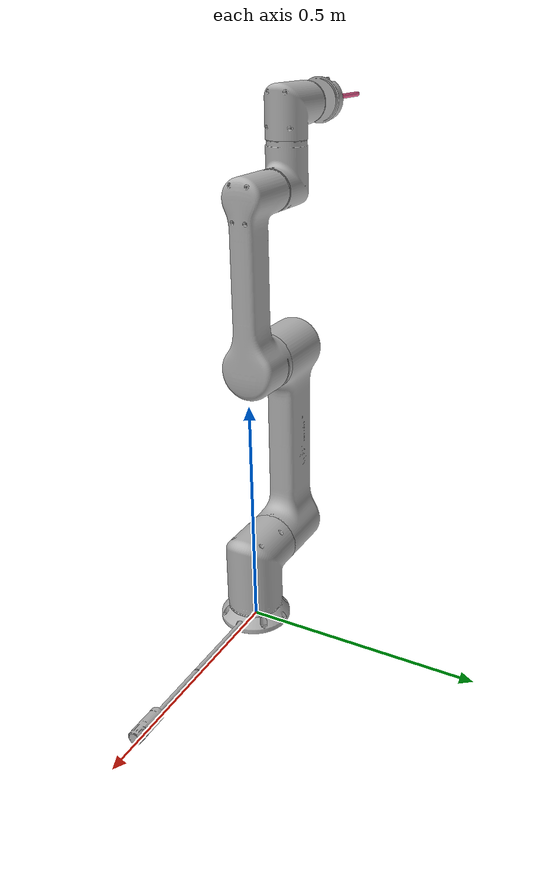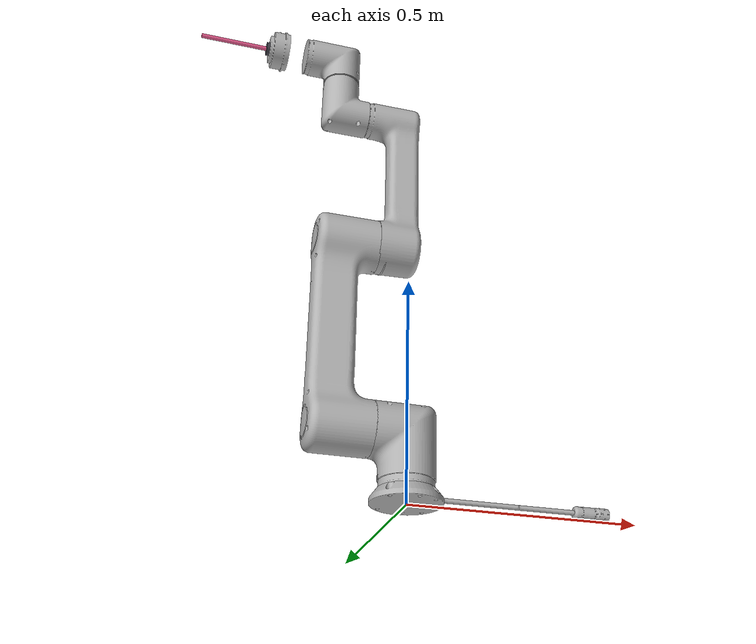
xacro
<?xml version="1.0" ?>
<robot name="hcr_robot" xmlns:xacro="http://www.ros.org/wiki/xacro">

<xacro:arg name="ros2_control"    default="true"/>
<xacro:arg name="hardware_plugin" default="mock_components/GenericSystem"/>
<xacro:arg name="rw_rate"         default="100"/>
<xacro:arg name="is_async"        default="false"/>
<!-- 기본값 false 는 플러그인 기본값과 같다 — 인자를 잊어도 로봇은 안 움직인다 -->
<xacro:arg name="allow_motion"    default="false"/>
<xacro:arg name="servo_off_on_deactivate" default="true"/>

<xacro:include filename="$(find hcr_robot_description)/urdf/materials.xacro" />
<xacro:include filename="$(find hcr_robot_description)/urdf/hcr_robot.trans" />
<xacro:include filename="$(find hcr_robot_description)/urdf/hcr_robot.gazebo" />
<xacro:include filename="$(find hcr_robot_description)/urdf/hcr_robot.ros2_control.xacro" />
<xacro:if value="$(arg ros2_control)">
  <xacro:hcr_robot_ros2_control plugin="$(arg hardware_plugin)"
                                rw_rate="$(arg rw_rate)"
                                is_async="$(arg is_async)"
                                allow_motion="$(arg allow_motion)"
                                servo_off_on_deactivate="$(arg servo_off_on_deactivate)"/>
</xacro:if>
<link name="base_link">
  <inertial>
    <origin xyz="0.044693591972953806 -9.689819846991377e-05 0.013982771179495564" rpy="0 0 0"/>
    <mass value="4.071462983655495"/>
    <inertia ixx="0.004614" iyy="0.063084" izz="0.067151" ixy="-2e-05" iyz="0.0" ixz="-0.000189"/>
  </inertial>
  <visual>
    <origin xyz="0 0 0" rpy="0 0 0"/>
    <geometry>
      <mesh filename="package://hcr_robot_description/meshes/base_link.stl" scale="0.001 0.001 0.001"/>
    </geometry>
    <material name="silver"/>
  </visual>
  <collision>
    <origin xyz="0 0 0" rpy="0 0 0"/>
    <geometry>
      <mesh filename="package://hcr_robot_description/meshes/base_link.stl" scale="0.001 0.001 0.001"/>
    </geometry>
  </collision>
</link>

<link name="link1_1">
  <inertial>
    <origin xyz="-0.009232924655966162 5.611908895686318e-08 0.08981078121700108" rpy="0 0 0"/>
    <mass value="17.125748524580114"/>
    <inertia ixx="0.054601" iyy="0.061186" izz="0.036738" ixy="0.0" iyz="-0.0" ixz="0.004569"/>
  </inertial>
  <visual>
    <origin xyz="-0.0 0.0 -0.03" rpy="0 0 0"/>
    <geometry>
      <mesh filename="package://hcr_robot_description/meshes/link1_1.stl" scale="0.001 0.001 0.001"/>
    </geometry>
    <material name="silver"/>
  </visual>
  <collision>
    <origin xyz="-0.0 0.0 -0.03" rpy="0 0 0"/>
    <geometry>
      <mesh filename="package://hcr_robot_description/meshes/link1_1.stl" scale="0.001 0.001 0.001"/>
    </geometry>
  </collision>
</link>

<link name="link2_1">
  <inertial>
    <origin xyz="-0.08134423156498356 0.0004999972193747809 0.21200027982915884" rpy="0 0 0"/>
    <mass value="32.073698785630135"/>
    <inertia ixx="1.334728" iyy="1.368804" izz="0.0845" ixy="-5e-06" iyz="-0.003172" ixz="-0.002068"/>
  </inertial>
  <visual>
    <origin xyz="0.0785 0.0 -0.148778" rpy="0 0 0"/>
    <geometry>
      <mesh filename="package://hcr_robot_description/meshes/link2_1.stl" scale="0.001 0.001 0.001"/>
    </geometry>
    <material name="silver"/>
  </visual>
  <collision>
    <origin xyz="0.0785 0.0 -0.148778" rpy="0 0 0"/>
    <geometry>
      <mesh filename="package://hcr_robot_description/meshes/link2_1.stl" scale="0.001 0.001 0.001"/>
    </geometry>
  </collision>
</link>

<link name="link3_1">
  <inertial>
    <origin xyz="0.03733088153046067 -8.45436915776097e-06 0.32700293666580915" rpy="0 0 0"/>
    <mass value="6.636542484506931"/>
    <inertia ixx="0.008668" iyy="0.014027" izz="0.010649" ixy="-0.0" iyz="0.0" ixz="0.001661"/>
  </inertial>
  <visual>
    <origin xyz="0.077848 -0.001 -0.572778" rpy="0 0 0"/>
    <geometry>
      <mesh filename="package://hcr_robot_description/meshes/link3_1.stl" scale="0.001 0.001 0.001"/>
    </geometry>
    <material name="silver"/>
  </visual>
  <collision>
    <origin xyz="0.077848 -0.001 -0.572778" rpy="0 0 0"/>
    <geometry>
      <mesh filename="package://hcr_robot_description/meshes/link3_1.stl" scale="0.001 0.001 0.001"/>
    </geometry>
  </collision>
</link>

<link name="link4_1">
  <inertial>
    <origin xyz="-0.053462210233883714 -3.2261679182082545e-07 0.022076827880824546" rpy="0 0 0"/>
    <mass value="6.518501202798632"/>
    <inertia ixx="0.011005" iyy="0.012783" izz="0.007491" ixy="-0.0" iyz="0.0" ixz="0.001222"/>
  </inertial>
  <visual>
    <origin xyz="0.107864 -0.000992 -0.911345" rpy="0 0 0"/>
    <geometry>
      <mesh filename="package://hcr_robot_description/meshes/link4_1.stl" scale="0.001 0.001 0.001"/>
    </geometry>
    <material name="silver"/>
  </visual>
  <collision>
    <origin xyz="0.107864 -0.000992 -0.911345" rpy="0 0 0"/>
    <geometry>
      <mesh filename="package://hcr_robot_description/meshes/link4_1.stl" scale="0.001 0.001 0.001"/>
    </geometry>
  </collision>
</link>

<link name="link5_1">
  <inertial>
    <origin xyz="-0.022082116809040042 -5.860596366637823e-07 0.0534553107989999" rpy="0 0 0"/>
    <mass value="6.518501237017786"/>
    <inertia ixx="0.007541" iyy="0.012794" izz="0.010966" ixy="0.0" iyz="-0.0" ixz="0.001224"/>
  </inertial>
  <visual>
    <origin xyz="0.169864 -0.000992 -1.000941" rpy="0 0 0"/>
    <geometry>
      <mesh filename="package://hcr_robot_description/meshes/link5_1.stl" scale="0.001 0.001 0.001"/>
    </geometry>
    <material name="silver"/>
  </visual>
  <collision>
    <origin xyz="0.169864 -0.000992 -1.000941" rpy="0 0 0"/>
    <geometry>
      <mesh filename="package://hcr_robot_description/meshes/link5_1.stl" scale="0.001 0.001 0.001"/>
    </geometry>
  </collision>
</link>

<link name="link6_1">
  <inertial>
    <origin xyz="-0.019264152679962065 -4.5474100852818493e-07 -0.0005907014657897669" rpy="0 0 0"/>
    <mass value="1.6914762668461325"/>
    <inertia ixx="0.001473" iyy="0.00094" izz="0.000976" ixy="0.0" iyz="0.0" ixz="-8e-06"/>
  </inertial>
  <visual>
    <origin xyz="0.25946 -0.000992 -1.062941" rpy="0 0 0"/>
    <geometry>
      <mesh filename="package://hcr_robot_description/meshes/link6_1.stl" scale="0.001 0.001 0.001"/>
    </geometry>
    <material name="silver"/>
  </visual>
  <collision>
    <origin xyz="0.25946 -0.000992 -1.062941" rpy="0 0 0"/>
    <geometry>
      <mesh filename="package://hcr_robot_description/meshes/link6_1.stl" scale="0.001 0.001 0.001"/>
    </geometry>
  </collision>
</link>

<joint name="joint_1" type="revolute">
  <origin xyz="0.0 0.0 0.03" rpy="0 0 0"/>
  <parent link="base_link"/>
  <child link="link1_1"/>
  <axis xyz="0.0 -0.0 1.0"/>
  <!-- 공식 ±360°, 180°/s (Appendix F·G). 종전 0~360°(음수 불가)는 IK 해가 있어도 계획 실패를 낳았다 -->
  <limit upper="7.853981" lower="-4.712388" effort="100" velocity="3.141593"/>
</joint>

<joint name="joint_2" type="revolute">
  <!-- ★ 실측 교정: x −0.0785→−0.059138 (+19.36mm). joint_3.x 와 짝을 이룬다 (아래 참조) -->
  <origin xyz="-0.059138 0.0 0.119001" rpy="0 0 0"/>
  <parent link="link1_1"/>
  <child link="link2_1"/>
  <axis xyz="-1.0 0.0 0.0"/>
  <!-- ★ 2026-08-15 교정 — δ=90° 정합. joint_1 주석 참조 -->
  <limit upper="7.853981" lower="-4.712388" effort="100" velocity="3.141593"/>
</joint>

<joint name="joint_3" type="revolute">
  <origin xyz="-0.019348 0.0 0.425001" rpy="0 0 0"/>
  <parent link="link2_1"/>
  <child link="link3_1"/>
  <axis xyz="1.0 0.0 0.0"/>
  <!-- J3 만 별도 제한 ±165° 가 실제로 존재한다 -->
  <limit upper="2.879793" lower="-2.879793" effort="100" velocity="3.141593"/>
</joint>

<joint name="joint_4" type="revolute">
  <!-- ★ 실측 교정: z 0.338567→0.338499 (−0.07mm) -->
  <origin xyz="-0.030016 -8e-06 0.338499" rpy="0 0 0"/>
  <parent link="link3_1"/>
  <child link="link4_1"/>
  <axis xyz="-1.0 0.0 -0.0"/>
  <!-- ★ 2026-08-15 교정 — δ=90° 정합. joint_1 주석 참조 -->
  <limit upper="7.853981" lower="-4.712388" effort="100" velocity="3.141593"/>
</joint>

<joint name="joint_5" type="revolute">
  <!-- ★ 실측 교정: z 0.089596→0.089504 (−0.09mm) -->
  <origin xyz="-0.062 0.0 0.089504" rpy="0 0 0"/>
  <parent link="link4_1"/>
  <child link="link5_1"/>
  <axis xyz="-0.0 -0.0 1.0"/>
  <!-- 실기 wrist2 가 −267° 로 관측된다 — 종전 ±120° 로는 현재 자세조차 표현 못 했다 -->
  <limit upper="6.283185" lower="-6.283185" effort="100" velocity="3.141593"/>
</joint>

<joint name="joint_6" type="revolute">
  <!-- ★ 실측 교정: x −0.089596→−0.132498 (−42.90mm). J5 축에서 flange 까지 거리가
       실기 132.5mm 인데 URDF 는 89.6mm 였다. 이 한 건이 전체 오차의 대부분이었다 -->
  <origin xyz="-0.132498 0.0 0.062" rpy="0 0 0"/>
  <parent link="link5_1"/>
  <child link="link6_1"/>
  <axis xyz="-1.0 -0.0 0.0"/>
  <limit upper="6.283185" lower="-6.283185" effort="100" velocity="3.141593"/>
</joint>

<xacro:include filename="$(find nyang_pen)/urdf/nyang_pen.xacro"/>
<xacro:nyang_pen parent="link6_1"/>

</robot>

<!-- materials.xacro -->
<robot name="hcr_robot" xmlns:xacro="http://www.ros.org/wiki/xacro" >

<material name="silver">
  <color rgba="0.700 0.700 0.700 1.000"/>
</material>

</robot>

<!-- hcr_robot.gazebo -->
<robot name="hcr_robot" xmlns:xacro="http://www.ros.org/wiki/xacro" >

<xacro:property name="body_color" value="Gazebo/Silver" />

<gazebo>
  <plugin name="control" filename="libgazebo_ros_control.so"/>
</gazebo>
<gazebo reference="base_link">
  <material>${body_color}</material>
  <mu1>0.2</mu1>
  <mu2>0.2</mu2>
  <selfCollide>true</selfCollide>
  <gravity>true</gravity>
</gazebo>

<gazebo reference="link1_1">
  <material>${body_color}</material>
  <mu1>0.2</mu1>
  <mu2>0.2</mu2>
  <selfCollide>true</selfCollide>
</gazebo>

<gazebo reference="link2_1">
  <material>${body_color}</material>
  <mu1>0.2</mu1>
  <mu2>0.2</mu2>
  <selfCollide>true</selfCollide>
</gazebo>

<gazebo reference="link3_1">
  <material>${body_color}</material>
  <mu1>0.2</mu1>
  <mu2>0.2</mu2>
  <selfCollide>true</selfCollide>
</gazebo>

<gazebo reference="link4_1">
  <material>${body_color}</material>
  <mu1>0.2</mu1>
  <mu2>0.2</mu2>
  <selfCollide>true</selfCollide>
</gazebo>

<gazebo reference="link5_1">
  <material>${body_color}</material>
  <mu1>0.2</mu1>
  <mu2>0.2</mu2>
  <selfCollide>true</selfCollide>
</gazebo>

<gazebo reference="link6_1">
  <material>${body_color}</material>
  <mu1>0.2</mu1>
  <mu2>0.2</mu2>
  <selfCollide>true</selfCollide>
</gazebo>

</robot>

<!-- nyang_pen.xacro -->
<robot xmlns:xacro="http://www.ros.org/wiki/xacro">

<xacro:macro name="nyang_pen"
             params="parent
                     mount_r:=0 mount_p:=-1.5707963 mount_y:=0
                     holder_length:=0.05 holder_radius:=0.015 holder_mass:=0.05
                     pen_length:=0.15   pen_radius:=0.005    pen_mass:=0.015">

  <xacro:macro name="nyang_pen_cyl_inertial" params="m r h">
    <inertial>
      <origin xyz="0 0 ${h/2}" rpy="0 0 0"/>
      <mass value="${m}"/>
      <inertia ixx="${m*(3*r*r + h*h)/12}" iyy="${m*(3*r*r + h*h)/12}" izz="${m*r*r/2}"
               ixy="0" iyz="0" ixz="0"/>
    </inertial>
  </xacro:macro>

  <material name="nyang_pen_holder_color"><color rgba="0.25 0.25 0.28 1.0"/></material>
  <material name="nyang_pen_body_color">  <color rgba="0.90 0.35 0.55 1.0"/></material>

  <link name="tool0"/>
  <joint name="flange_to_tool0" type="fixed">
    <parent link="${parent}"/>
    <child  link="tool0"/>
    <origin xyz="0 0 0" rpy="${mount_r} ${mount_p} ${mount_y}"/>
  </joint>

  <!-- ── 홀더 — tool0 원점에서 +Z 로 holder_length ──────────────────────────── -->
  <link name="nyang_pen_holder">
    <xacro:nyang_pen_cyl_inertial m="${holder_mass}" r="${holder_radius}" h="${holder_length}"/>
    <visual>
      <origin xyz="0 0 ${holder_length/2}" rpy="0 0 0"/>
      <geometry><cylinder length="${holder_length}" radius="${holder_radius}"/></geometry>
      <material name="nyang_pen_holder_color"/>
    </visual>
    <collision>
      <origin xyz="0 0 ${holder_length/2}" rpy="0 0 0"/>
      <geometry><cylinder length="${holder_length}" radius="${holder_radius}"/></geometry>
    </collision>
  </link>
  <joint name="tool0_to_nyang_pen_holder" type="fixed">
    <parent link="tool0"/>
    <child  link="nyang_pen_holder"/>
    <origin xyz="0 0 0" rpy="0 0 0"/>
  </joint>

  <!-- ── 펜 — 홀더 끝에서 이어 +Z 로 pen_length ─────────────────────────────── -->
  <link name="nyang_pen_body">
    <xacro:nyang_pen_cyl_inertial m="${pen_mass}" r="${pen_radius}" h="${pen_length}"/>
    <visual>
      <origin xyz="0 0 ${pen_length/2}" rpy="0 0 0"/>
      <geometry><cylinder length="${pen_length}" radius="${pen_radius}"/></geometry>
      <material name="nyang_pen_body_color"/>
    </visual>
    <collision>
      <origin xyz="0 0 ${pen_length/2}" rpy="0 0 0"/>
      <geometry><cylinder length="${pen_length}" radius="${pen_radius}"/></geometry>
    </collision>
  </link>
  <joint name="nyang_pen_holder_to_body" type="fixed">
    <parent link="nyang_pen_holder"/>
    <child  link="nyang_pen_body"/>
    <origin xyz="0 0 ${holder_length}" rpy="0 0 0"/>
  </joint>

  <link name="pen_tip"/>
  <joint name="nyang_pen_body_to_pen_tip" type="fixed">
    <parent link="nyang_pen_body"/>
    <child  link="pen_tip"/>
    <origin xyz="0 0 ${pen_length}" rpy="0 0 0"/>
  </joint>

</xacro:macro>

</robot>
